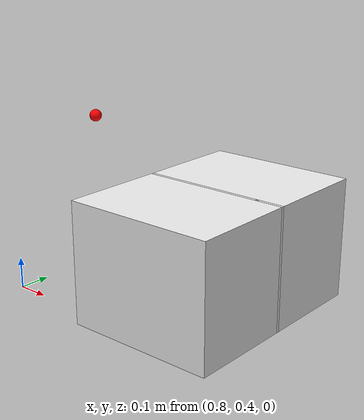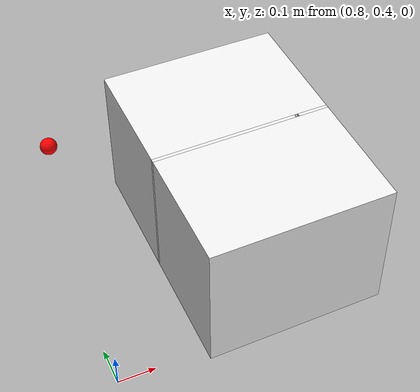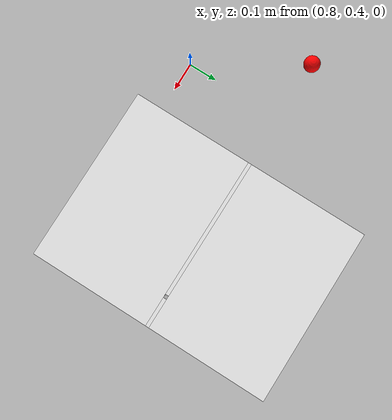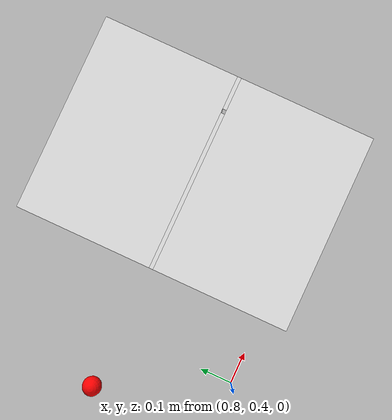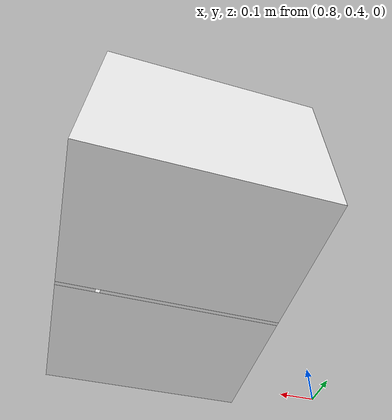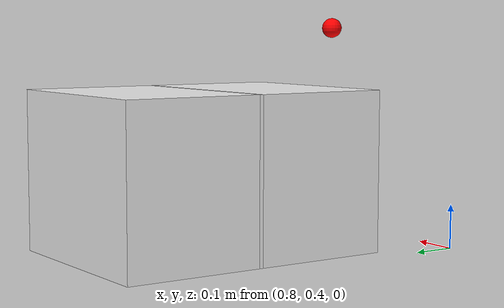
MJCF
<mujoco>
    <option timestep="0.002">
        <flag warmstart="enable"></flag>
    </option>

    <compiler angle="radian" coordinate="local" meshdir="../stls" texturedir="../textures"></compiler>

    <asset>
        <material name="floor_mat" specular="0" shininess="0.5" reflectance="0" rgba="0.2 0.2 0.2 0"></material>
        <material name="table_mat" specular="0" shininess="0.5" reflectance="0" rgba="0.93 0.93 0.93 1"></material>
    </asset>

    <worldbody>
        <geom name="floor0" pos="0.8 0.75 0" size="0.85 0.7 1" type="plane" condim="3" material="floor_mat"></geom>
        <body name="floor0" pos="0.8 0.75 0">
            <site name="target0" pos="0 0 0.5" size="0.02 0.02 0.02" rgba="1 0 0 1" type="sphere"></site>
        </body>

        <body pos="1.3 0.5725 0.15" name="table0">
            <geom size="0.25 0.1725 0.2" type="box" mass="2000" material="table_mat" conaffinity="3" contype="3"></geom>
        </body>

        <body pos="1.3 0.9275 0.15" name="table1">
            <geom size="0.25 0.1725 0.2" type="box" mass="2000" material="table_mat" conaffinity="3" contype="3"></geom>
        </body>

        <body pos="1.2525 0.75 0.15" name="table2">
            <geom size="0.2025 0.005 0.2" type="box" mass="2000" material="table_mat" conaffinity="3" contype="3"></geom>
        </body>

        <body pos="1.5075 0.75 0.15" name="table3">
            <geom size="0.0425 0.005 0.2" type="box" mass="2000" material="table_mat" conaffinity="3" contype="3"></geom>
        </body>

        <light directional="true" ambient="0.2 0.2 0.2" diffuse="0.8 0.8 0.8" specular="0.3 0.3 0.3" castshadow="false"
               pos="0 0 4" dir="0 0 -1" name="light0"></light>
    </worldbody>
</mujoco>
